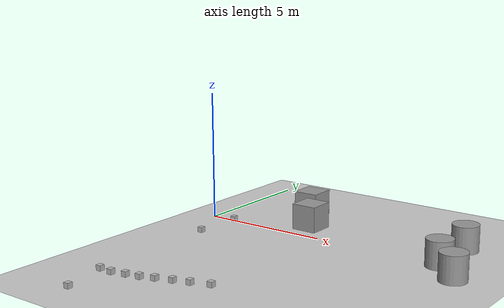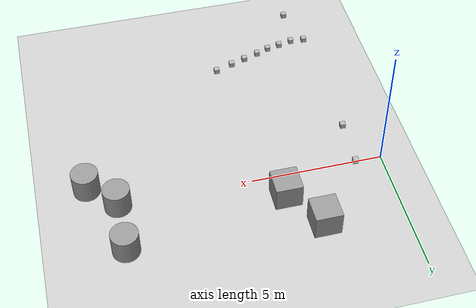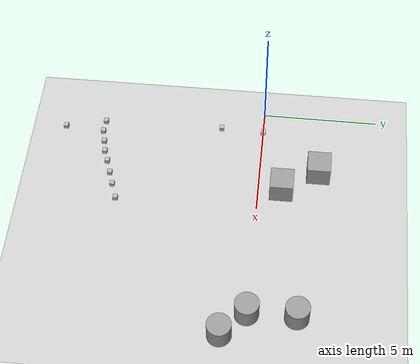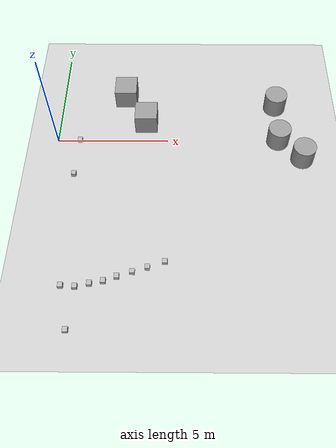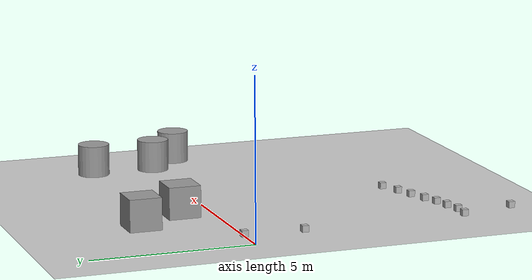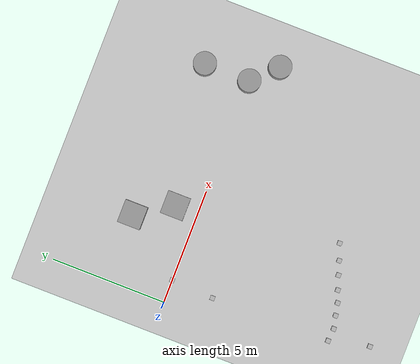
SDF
<sdf version="1.4">
 <world name="default">
  <model name="ground_plane">
   <static>1</static>
   <link name="link">
    <collision name="collision">
     <geometry><plane><normal>0 0 1</normal><size>100 100</size></plane></geometry>
     <surface><friction><ode><mu>100</mu><mu2>50</mu2></ode></friction></surface>
    </collision>
    <visual name="visual">
     <cast_shadows>0</cast_shadows>
     <geometry><plane><normal>0 0 1</normal><size>100 100</size></plane></geometry>
     <material>
      <script><uri>file://media/materials/scripts/gazebo.material</uri><name>Gazebo/Grey</name></script>
     </material>
    </visual>
    <velocity_decay><linear>0</linear><angular>0</angular></velocity_decay>
   </link>
  </model>
  <model name="unit_box_2">
   <pose>3 2.53662 0.5 0 -0 0</pose>
   <link name="link">
    <inertial>
     <mass>1</mass>
     <inertia><ixx>1</ixx><ixy>0</ixy><ixz>0</ixz><iyy>1</iyy><iyz>0</iyz><izz>1</izz></inertia>
    </inertial>
    <collision name="collision"><geometry><box><size>1 1 1</size></box></geometry></collision>
    <visual name="visual">
     <geometry><box><size>1 1 1</size></box></geometry>
     <material>
      <script><uri>file://media/materials/scripts/gazebo.material</uri><name>Gazebo/Grey</name></script>
     </material>
    </visual>
    <velocity_decay><linear>0</linear><angular>0</angular></velocity_decay>
   </link>
   <static>0</static>
  </model>
  <model name="unit_box_4">
   <pose>4 1 0.5 0 -0 0</pose>
   <link name="link">
    <inertial>
     <mass>1</mass>
     <inertia><ixx>1</ixx><ixy>0</ixy><ixz>0</ixz><iyy>1</iyy><iyz>0</iyz><izz>1</izz></inertia>
    </inertial>
    <collision name="collision"><geometry><box><size>1 1 1</size></box></geometry></collision>
    <visual name="visual">
     <geometry><box><size>1 1 1</size></box></geometry>
     <material>
      <script><uri>file://media/materials/scripts/gazebo.material</uri><name>Gazebo/Grey</name></script>
     </material>
    </visual>
    <velocity_decay><linear>0</linear><angular>0</angular></velocity_decay>
   </link>
   <static>0</static>
  </model>
  <model name="unit_cylinder_6">
   <pose>11 -0.999999 0.499994 -1e-06 1e-06 0</pose>
   <link name="link">
    <inertial>
     <mass>1</mass>
     <inertia><ixx>1</ixx><ixy>0</ixy><ixz>0</ixz><iyy>1</iyy><iyz>0</iyz><izz>1</izz></inertia>
    </inertial>
    <collision name="collision">
     <geometry><cylinder><radius>0.5</radius><length>1</length></cylinder></geometry>
    </collision>
    <visual name="visual">
     <geometry><cylinder><radius>0.5</radius><length>1</length></cylinder></geometry>
     <material>
      <script><uri>file://media/materials/scripts/gazebo.material</uri><name>Gazebo/Grey</name></script>
     </material>
    </visual>
    <velocity_decay><linear>0</linear><angular>0</angular></velocity_decay>
   </link>
   <static>0</static>
  </model>
  <model name="unit_cylinder_7">
   <pose>10 2 0.499996 1e-06 -1e-06 0</pose>
   <link name="link">
    <inertial>
     <mass>1</mass>
     <inertia><ixx>1</ixx><ixy>0</ixy><ixz>0</ixz><iyy>1</iyy><iyz>0</iyz><izz>1</izz></inertia>
    </inertial>
    <collision name="collision">
     <geometry><cylinder><radius>0.5</radius><length>1</length></cylinder></geometry>
    </collision>
    <visual name="visual">
     <geometry><cylinder><radius>0.5</radius><length>1</length></cylinder></geometry>
     <material>
      <script><uri>file://media/materials/scripts/gazebo.material</uri><name>Gazebo/Grey</name></script>
     </material>
    </visual>
    <velocity_decay><linear>0</linear><angular>0</angular></velocity_decay>
   </link>
   <static>0</static>
  </model>
  <model name="unit_cylinder_8">
   <pose>10 0 0.499998 -0 -0 -0</pose>
   <link name="link">
    <inertial>
     <mass>1</mass>
     <inertia><ixx>1</ixx><ixy>0</ixy><ixz>0</ixz><iyy>1</iyy><iyz>0</iyz><izz>1</izz></inertia>
    </inertial>
    <collision name="collision">
     <geometry><cylinder><radius>0.5</radius><length>1</length></cylinder></geometry>
    </collision>
    <visual name="visual">
     <geometry><cylinder><radius>0.5</radius><length>1</length></cylinder></geometry>
     <material>
      <script><uri>file://media/materials/scripts/gazebo.material</uri><name>Gazebo/Grey</name></script>
     </material>
    </visual>
    <velocity_decay><linear>0</linear><angular>0</angular></velocity_decay>
   </link>
   <static>0</static>
  </model>
  <model name="box_0">
   <static>0</static>
   <link name="box">
    <pose>0 0 0.5 0 -0 0</pose>
    <collision name="collision"><geometry><box><size>0.2 0.2 0.2</size></box></geometry></collision>
    <visual name="visual">
     <geometry><box><size>0.2 0.2 0.2</size></box></geometry>
     <material>
      <script>
       <uri>model://box/material/scripts</uri>
       <uri>model://box/material/textures</uri>
       <name>Custom/box</name>
      </script>
     </material>
    </visual>
    <velocity_decay><linear>0</linear><angular>0</angular></velocity_decay>
    <inertial>
     <inertia><ixx>1</ixx><ixy>0</ixy><ixz>0</ixz><iyy>1</iyy><iyz>0</iyz><izz>1</izz></inertia>
     <mass>1</mass>
    </inertial>
   </link>
   <pose>2.62973 -6.86856 -0.4 3e-06 -1e-06 7e-06</pose>
  </model>
  <model name="box_1">
   <static>0</static>
   <link name="box">
    <pose>0 0 0.5 0 -0 0</pose>
    <collision name="collision"><geometry><box><size>0.2 0.2 0.2</size></box></geometry></collision>
    <visual name="visual">
     <geometry><box><size>0.2 0.2 0.2</size></box></geometry>
     <material>
      <script>
       <uri>model://box/material/scripts</uri>
       <uri>model://box/material/textures</uri>
       <name>Custom/box</name>
      </script>
     </material>
    </visual>
    <velocity_decay><linear>0</linear><angular>0</angular></velocity_decay>
    <inertial>
     <inertia><ixx>1</ixx><ixy>0</ixy><ixz>0</ixz><iyy>1</iyy><iyz>0</iyz><izz>1</izz></inertia>
     <mass>1</mass>
    </inertial>
   </link>
   <pose>4.3233 -6.2846 -0.4 0 -0 2.5e-05</pose>
  </model>
  <model name="box_2">
   <static>0</static>
   <link name="box">
    <pose>0 0 0.5 0 -0 0</pose>
    <collision name="collision"><geometry><box><size>0.2 0.2 0.2</size></box></geometry></collision>
    <visual name="visual">
     <geometry><box><size>0.2 0.2 0.2</size></box></geometry>
     <material>
      <script>
       <uri>model://box/material/scripts</uri>
       <uri>model://box/material/textures</uri>
       <name>Custom/box</name>
      </script>
     </material>
    </visual>
    <velocity_decay><linear>0</linear><angular>0</angular></velocity_decay>
    <inertial>
     <inertia><ixx>1</ixx><ixy>0</ixy><ixz>0</ixz><iyy>1</iyy><iyz>0</iyz><izz>1</izz></inertia>
     <mass>1</mass>
    </inertial>
   </link>
   <pose>5.0133 -6.04081 -0.4 0 1e-06 -9e-06</pose>
  </model>
  <model name="box_3">
   <static>0</static>
   <link name="box">
    <pose>0 0 0.5 0 -0 0</pose>
    <collision name="collision"><geometry><box><size>0.2 0.2 0.2</size></box></geometry></collision>
    <visual name="visual">
     <geometry><box><size>0.2 0.2 0.2</size></box></geometry>
     <material>
      <script>
       <uri>model://box/material/scripts</uri>
       <uri>model://box/material/textures</uri>
       <name>Custom/box</name>
      </script>
     </material>
    </visual>
    <velocity_decay><linear>0</linear><angular>0</angular></velocity_decay>
    <inertial>
     <inertia><ixx>1</ixx><ixy>0</ixy><ixz>0</ixz><iyy>1</iyy><iyz>0</iyz><izz>1</izz></inertia>
     <mass>1</mass>
    </inertial>
   </link>
   <pose>1.54933 -7.10718 -0.4 1e-06 -0 -1.3e-05</pose>
  </model>
  <model name="box_4">
   <static>0</static>
   <link name="box">
    <pose>0 0 0.5 0 -0 0</pose>
    <collision name="collision"><geometry><box><size>0.2 0.2 0.2</size></box></geometry></collision>
    <visual name="visual">
     <geometry><box><size>0.2 0.2 0.2</size></box></geometry>
     <material>
      <script>
       <uri>model://box/material/scripts</uri>
       <uri>model://box/material/textures</uri>
       <name>Custom/box</name>
      </script>
     </material>
    </visual>
    <velocity_decay><linear>0</linear><angular>0</angular></velocity_decay>
    <inertial>
     <inertia><ixx>1</ixx><ixy>0</ixy><ixz>0</ixz><iyy>1</iyy><iyz>0</iyz><izz>1</izz></inertia>
     <mass>1</mass>
    </inertial>
   </link>
   <pose>0.993127 -7.06795 -0.399999 -3e-06 -4e-06 -1.3e-05</pose>
  </model>
  <model name="box_7">
   <static>0</static>
   <link name="box">
    <pose>0 0 0.5 0 -0 0</pose>
    <collision name="collision"><geometry><box><size>0.2 0.2 0.2</size></box></geometry></collision>
    <visual name="visual">
     <geometry><box><size>0.2 0.2 0.2</size></box></geometry>
     <material>
      <script>
       <uri>model://box/material/scripts</uri>
       <uri>model://box/material/textures</uri>
       <name>Custom/box</name>
      </script>
     </material>
    </visual>
    <velocity_decay><linear>0</linear><angular>0</angular></velocity_decay>
    <inertial>
     <inertia><ixx>1</ixx><ixy>0</ixy><ixz>0</ixz><iyy>1</iyy><iyz>0</iyz><izz>1</izz></inertia>
     <mass>1</mass>
    </inertial>
   </link>
   <pose>0.999998 1e-06 -0.4 1e-06 3e-06 3.7e-05</pose>
  </model>
  <model name="box_8">
   <static>0</static>
   <link name="box">
    <pose>0 0 0.5 0 -0 0</pose>
    <collision name="collision"><geometry><box><size>0.2 0.2 0.2</size></box></geometry></collision>
    <visual name="visual">
     <geometry><box><size>0.2 0.2 0.2</size></box></geometry>
     <material>
      <script>
       <uri>model://box/material/scripts</uri>
       <uri>model://box/material/textures</uri>
       <name>Custom/box</name>
      </script>
     </material>
    </visual>
    <velocity_decay><linear>0</linear><angular>0</angular></velocity_decay>
    <inertial>
     <inertia><ixx>1</ixx><ixy>0</ixy><ixz>0</ixz><iyy>1</iyy><iyz>0</iyz><izz>1</izz></inertia>
     <mass>1</mass>
    </inertial>
   </link>
   <pose>0.914161 -1.8592 -0.4 3.23117e-27 2e-06 8e-06</pose>
  </model>
  <model name="box_12">
   <static>0</static>
   <link name="box">
    <pose>0 0 0.5 0 -0 0</pose>
    <collision name="collision"><geometry><box><size>0.2 0.2 0.2</size></box></geometry></collision>
    <visual name="visual">
     <geometry><box><size>0.2 0.2 0.2</size></box></geometry>
     <material>
      <script>
       <uri>model://box/material/scripts</uri>
       <uri>model://box/material/textures</uri>
       <name>Custom/box</name>
      </script>
     </material>
    </visual>
    <velocity_decay><linear>0</linear><angular>0</angular></velocity_decay>
    <inertial>
     <inertia><ixx>1</ixx><ixy>0</ixy><ixz>0</ixz><iyy>1</iyy><iyz>0</iyz><izz>1</izz></inertia>
     <mass>1</mass>
    </inertial>
   </link>
   <pose>3.73872 -6.47803 -0.400007 -1.29247e-26 1.4e-05 7e-06</pose>
  </model>
  <model name="box_13">
   <static>0</static>
   <link name="box">
    <pose>0 0 0.5 0 -0 0</pose>
    <collision name="collision"><geometry><box><size>0.2 0.2 0.2</size></box></geometry></collision>
    <visual name="visual">
     <geometry><box><size>0.2 0.2 0.2</size></box></geometry>
     <material>
      <script>
       <uri>model://box/material/scripts</uri>
       <uri>model://box/material/textures</uri>
       <name>Custom/box</name>
      </script>
     </material>
    </visual>
    <velocity_decay><linear>0</linear><angular>0</angular></velocity_decay>
    <inertial>
     <inertia><ixx>1</ixx><ixy>0</ixy><ixz>0</ixz><iyy>1</iyy><iyz>0</iyz><izz>1</izz></inertia>
     <mass>1</mass>
    </inertial>
   </link>
   <pose>3.14076 -6.67934 -0.400009 6e-06 1e-06 -7e-06</pose>
  </model>
  <model name="box_14">
   <static>0</static>
   <link name="box">
    <pose>0 0 0.5 0 -0 0</pose>
    <collision name="collision"><geometry><box><size>0.2 0.2 0.2</size></box></geometry></collision>
    <visual name="visual">
     <geometry><box><size>0.2 0.2 0.2</size></box></geometry>
     <material>
      <script>
       <uri>model://box/material/scripts</uri>
       <uri>model://box/material/textures</uri>
       <name>Custom/box</name>
      </script>
     </material>
    </visual>
    <velocity_decay><linear>0</linear><angular>0</angular></velocity_decay>
    <inertial>
     <inertia><ixx>1</ixx><ixy>0</ixy><ixz>0</ixz><iyy>1</iyy><iyz>0</iyz><izz>1</izz></inertia>
     <mass>1</mass>
    </inertial>
   </link>
   <pose>2.10136 -6.98075 -0.4 8.07794e-28 -1e-06 -7e-06</pose>
  </model>
  <model name="box_16">
   <static>0</static>
   <link name="box">
    <pose>0 0 0.5 0 -0 0</pose>
    <collision name="collision"><geometry><box><size>0.2 0.2 0.2</size></box></geometry></collision>
    <visual name="visual">
     <geometry><box><size>0.2 0.2 0.2</size></box></geometry>
     <material>
      <script>
       <uri>model://box/material/scripts</uri>
       <uri>model://box/material/textures</uri>
       <name>Custom/box</name>
      </script>
     </material>
    </visual>
    <velocity_decay><linear>0</linear><angular>0</angular></velocity_decay>
    <inertial>
     <inertia><ixx>1</ixx><ixy>0</ixy><ixz>0</ixz><iyy>1</iyy><iyz>0</iyz><izz>1</izz></inertia>
     <mass>1</mass>
    </inertial>
   </link>
   <pose>1.40326 -8.80738 -0.4 -1e-06 -0 -5e-06</pose>
  </model>
 </world>
</sdf>
